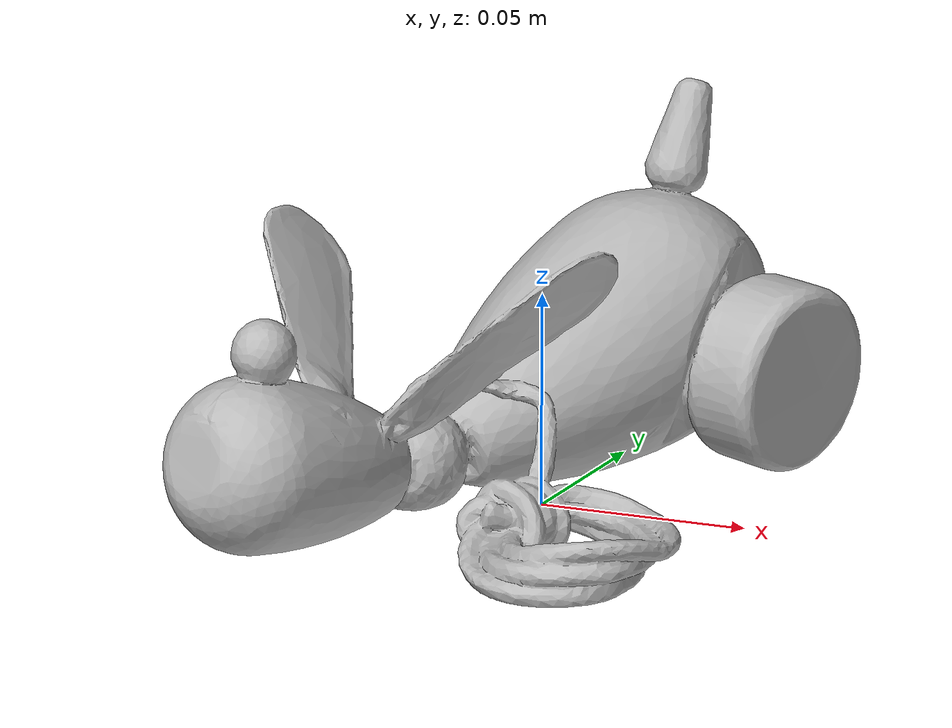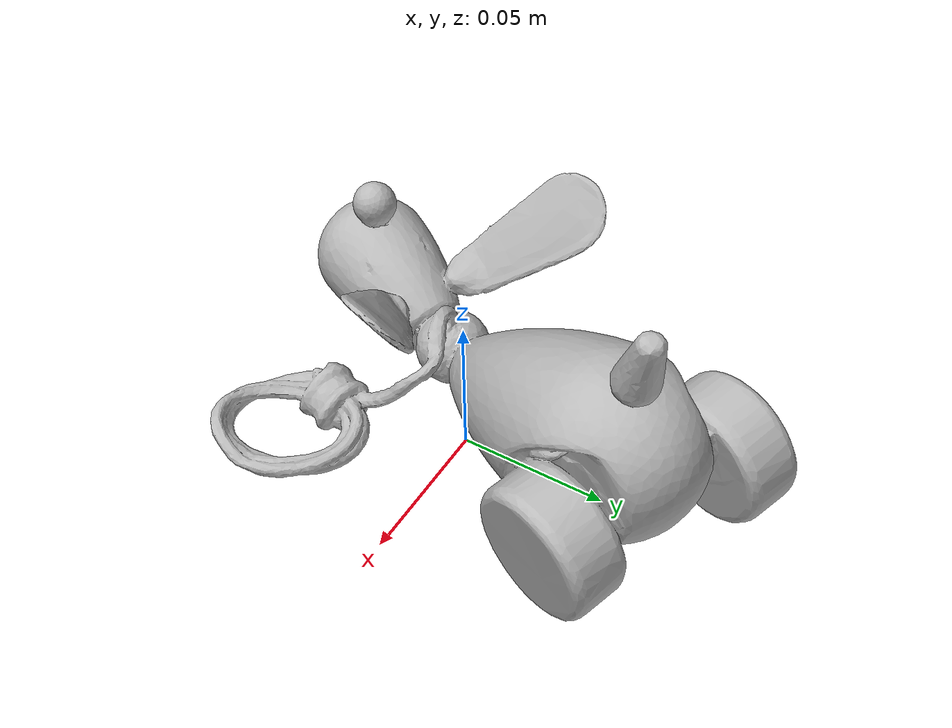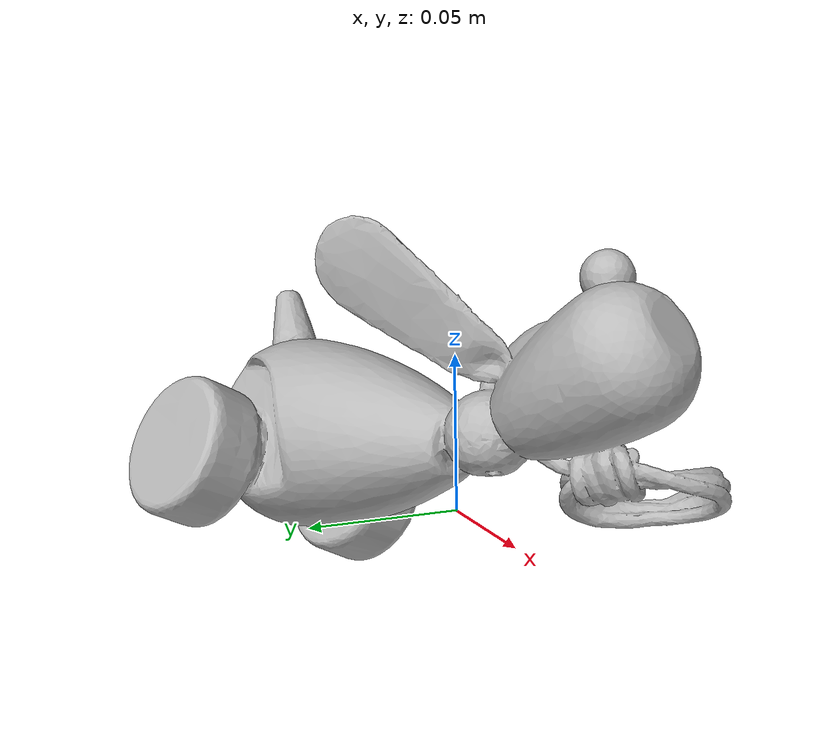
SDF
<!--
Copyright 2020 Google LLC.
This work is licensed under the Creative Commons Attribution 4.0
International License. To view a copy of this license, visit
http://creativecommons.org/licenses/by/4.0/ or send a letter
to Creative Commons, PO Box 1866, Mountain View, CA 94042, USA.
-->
<?xml version="1.0" ?>
<sdf version="1.6">
  <model name="SIT_N_WALK_PUPPY">
    <link name="link_0">
      <visual name="visual">
        <geometry>
          <mesh>
            <uri>meshes/model.obj</uri>
          </mesh>
        </geometry>
      </visual>
      <collision name="collision_0">
        <geometry>
          <mesh>
            <uri>meshes/model.obj</uri>
          </mesh>
        </geometry>
      </collision>
    </link>
  </model>
</sdf>
